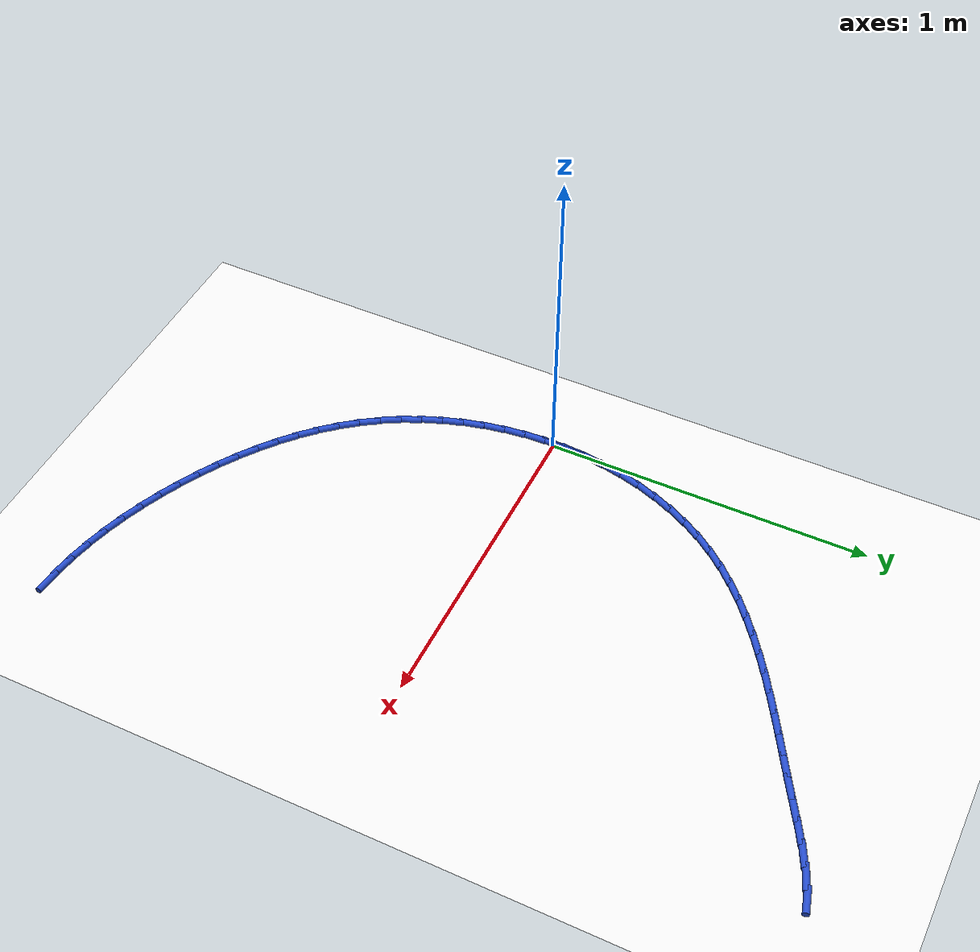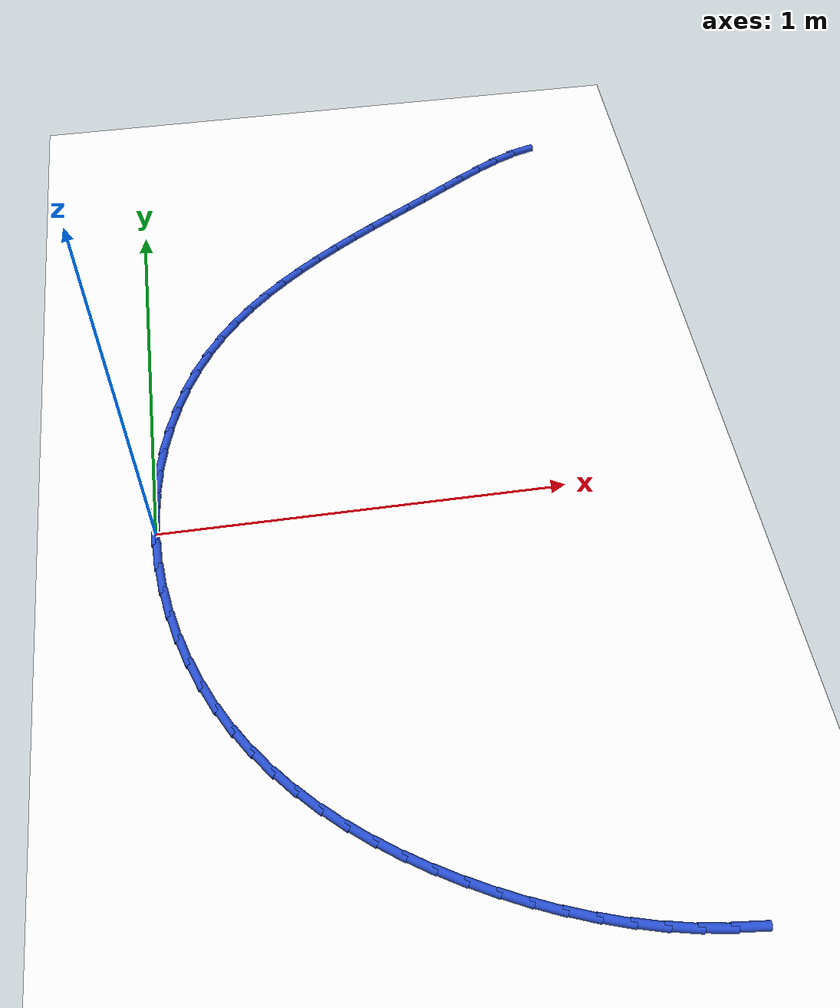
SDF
<sdf version="1.6">
 <world name="default">
  <model name="ground_plane">
   <static>1</static>
   <link name="link">
    <collision name="collision">
     <geometry><plane><normal>0 0 1</normal><size>100 100</size></plane></geometry>
     <surface><friction><ode><mu>100</mu><mu2>50</mu2></ode></friction></surface>
    </collision>
    <visual name="visual">
     <cast_shadows>0</cast_shadows>
     <geometry><plane><normal>0 0 1</normal><size>100 100</size></plane></geometry>
     <material>
      <script><uri>file://media/materials/scripts/gazebo.material</uri><name>Gazebo/WhiteGlow</name></script>
     </material>
    </visual>
   </link>
  </model>
  <model name="line">
   <link name="link_0">
    <pose>2.7755575615628914e-17 -8.326672684688674e-17 0.01 0 1.57 1.5383048450577044</pose>
    <collision name="collision">
     <geometry><cylinder><radius>0.01</radius><length>0.08</length></cylinder></geometry>
    </collision>
    <visual name="visual">
     <material>
      <script><name>Gazebo/Blue</name><uri>file://media/materials/scripts/gazebo.material</uri></script>
     </material>
     <geometry><cylinder><radius>0.01</radius><length>0.08</length></cylinder></geometry>
    </visual>
   </link>
   <link name="link_1">
    <pose>0.0021593180544016606 0.06643458605412965 0.01 0 1.57 1.473430863029208</pose>
    <collision name="collision">
     <geometry><cylinder><radius>0.01</radius><length>0.08</length></cylinder></geometry>
    </collision>
    <visual name="visual">
     <material>
      <script><name>Gazebo/Blue</name><uri>file://media/materials/scripts/gazebo.material</uri></script>
     </material>
     <geometry><cylinder><radius>0.01</radius><length>0.08</length></cylinder></geometry>
    </visual>
   </link>
   <link name="link_2">
    <pose>0.00862148668599755 0.1325949568865087 0.01 0 1.57 1.4088046228676312</pose>
    <collision name="collision">
     <geometry><cylinder><radius>0.01</radius><length>0.08</length></cylinder></geometry>
    </collision>
    <visual name="visual">
     <material>
      <script><name>Gazebo/Blue</name><uri>file://media/materials/scripts/gazebo.material</uri></script>
     </material>
     <geometry><cylinder><radius>0.01</radius><length>0.08</length></cylinder></geometry>
    </visual>
   </link>
   <link name="link_3">
    <pose>0.019326214655444214 0.19809786922541528 0.01 0 1.57 1.3438339779923358</pose>
    <collision name="collision">
     <geometry><cylinder><radius>0.01</radius><length>0.08</length></cylinder></geometry>
    </collision>
    <visual name="visual">
     <material>
      <script><name>Gazebo/Blue</name><uri>file://media/materials/scripts/gazebo.material</uri></script>
     </material>
     <geometry><cylinder><radius>0.01</radius><length>0.08</length></cylinder></geometry>
    </visual>
   </link>
   <link name="link_4">
    <pose>0.03421321072339824 0.26256007979912793 0.01 0 1.57 1.2779212628547423</pose>
    <collision name="collision">
     <geometry><cylinder><radius>0.01</radius><length>0.08</length></cylinder></geometry>
    </collision>
    <visual name="visual">
     <material>
      <script><name>Gazebo/Blue</name><uri>file://media/materials/scripts/gazebo.material</uri></script>
     </material>
     <geometry><cylinder><radius>0.01</radius><length>0.08</length></cylinder></geometry>
    </visual>
   </link>
   <link name="link_5">
    <pose>0.05322218365051612 0.3255983453359247 0.01 0 1.57 1.2104658327878925</pose>
    <collision name="collision">
     <geometry><cylinder><radius>0.01</radius><length>0.08</length></cylinder></geometry>
    </collision>
    <visual name="visual">
     <material>
      <script><name>Gazebo/Blue</name><uri>file://media/materials/scripts/gazebo.material</uri></script>
     </material>
     <geometry><cylinder><radius>0.01</radius><length>0.08</length></cylinder></geometry>
    </visual>
   </link>
   <link name="link_6">
    <pose>0.0762928421974544 0.3868294225640839 0.01 0 1.57 1.1408694959239598</pose>
    <collision name="collision">
     <geometry><cylinder><radius>0.01</radius><length>0.08</length></cylinder></geometry>
    </collision>
    <visual name="visual">
     <material>
      <script><name>Gazebo/Blue</name><uri>file://media/materials/scripts/gazebo.material</uri></script>
     </material>
     <geometry><cylinder><radius>0.01</radius><length>0.08</length></cylinder></geometry>
    </visual>
   </link>
   <link name="link_7">
    <pose>0.10336489512486964 0.445870068211884 0.01 0 1.57 1.068547176870324</pose>
    <collision name="collision">
     <geometry><cylinder><radius>0.01</radius><length>0.08</length></cylinder></geometry>
    </collision>
    <visual name="visual">
     <material>
      <script><name>Gazebo/Blue</name><uri>file://media/materials/scripts/gazebo.material</uri></script>
     </material>
     <geometry><cylinder><radius>0.01</radius><length>0.08</length></cylinder></geometry>
    </visual>
   </link>
   <link name="link_8">
    <pose>0.1343780511934184 0.5023370390076031 0.01 0 1.57 0.9929823302384625</pose>
    <collision name="collision">
     <geometry><cylinder><radius>0.01</radius><length>0.08</length></cylinder></geometry>
    </collision>
    <visual name="visual">
     <material>
      <script><name>Gazebo/Blue</name><uri>file://media/materials/scripts/gazebo.material</uri></script>
     </material>
     <geometry><cylinder><radius>0.01</radius><length>0.08</length></cylinder></geometry>
    </visual>
   </link>
   <link name="link_9">
    <pose>0.16927091916878825 0.5558497208174965 0.01 0 1.57 0.9169583615623522</pose>
    <collision name="collision">
     <geometry><cylinder><radius>0.01</radius><length>0.08</length></cylinder></geometry>
    </collision>
    <visual name="visual">
     <material>
      <script><name>Gazebo/Blue</name><uri>file://media/materials/scripts/gazebo.material</uri></script>
     </material>
     <geometry><cylinder><radius>0.01</radius><length>0.08</length></cylinder></geometry>
    </visual>
   </link>
   <link name="link_10">
    <pose>0.20788991143261926 0.6062478614381221 0.01 0 1.57 0.8464773536232252</pose>
    <collision name="collision">
     <geometry><cylinder><radius>0.01</radius><length>0.08</length></cylinder></geometry>
    </collision>
    <visual name="visual">
     <material>
      <script><name>Gazebo/Blue</name><uri>file://media/materials/scripts/gazebo.material</uri></script>
     </material>
     <geometry><cylinder><radius>0.01</radius><length>0.08</length></cylinder></geometry>
    </visual>
   </link>
   <link name="link_11">
    <pose>0.2499210057239522 0.6537546693396363 0.01 0 1.57 0.7827757205989305</pose>
    <collision name="collision">
     <geometry><cylinder><radius>0.01</radius><length>0.08</length></cylinder></geometry>
    </collision>
    <visual name="visual">
     <material>
      <script><name>Gazebo/Blue</name><uri>file://media/materials/scripts/gazebo.material</uri></script>
     </material>
     <geometry><cylinder><radius>0.01</radius><length>0.08</length></cylinder></geometry>
    </visual>
   </link>
   <link name="link_12">
    <pose>0.2950341050000433 0.698631773912711 0.01 0 1.57 0.7262028533721293</pose>
    <collision name="collision">
     <geometry><cylinder><radius>0.01</radius><length>0.08</length></cylinder></geometry>
    </collision>
    <visual name="visual">
     <material>
      <script><name>Gazebo/Blue</name><uri>file://media/materials/scripts/gazebo.material</uri></script>
     </material>
     <geometry><cylinder><radius>0.01</radius><length>0.08</length></cylinder></geometry>
    </visual>
   </link>
   <link name="link_13">
    <pose>0.34289911221814906 0.7411408045480177 0.01 0 1.57 0.676836737810878</pose>
    <collision name="collision">
     <geometry><cylinder><radius>0.01</radius><length>0.08</length></cylinder></geometry>
    </collision>
    <visual name="visual">
     <material>
      <script><name>Gazebo/Blue</name><uri>file://media/materials/scripts/gazebo.material</uri></script>
     </material>
     <geometry><cylinder><radius>0.01</radius><length>0.08</length></cylinder></geometry>
    </visual>
   </link>
   <link name="link_14">
    <pose>0.39318593033552535 0.7815433906362274 0.01 0 1.57 0.6345695370384538</pose>
    <collision name="collision">
     <geometry><cylinder><radius>0.01</radius><length>0.08</length></cylinder></geometry>
    </collision>
    <visual name="visual">
     <material>
      <script><name>Gazebo/Blue</name><uri>file://media/materials/scripts/gazebo.material</uri></script>
     </material>
     <geometry><cylinder><radius>0.01</radius><length>0.08</length></cylinder></geometry>
    </visual>
   </link>
   <link name="link_15">
    <pose>0.44556446230942903 0.8201011615680125 0.01 0 1.57 0.5991857148123297</pose>
    <collision name="collision">
     <geometry><cylinder><radius>0.01</radius><length>0.08</length></cylinder></geometry>
    </collision>
    <visual name="visual">
     <material>
      <script><name>Gazebo/Blue</name><uri>file://media/materials/scripts/gazebo.material</uri></script>
     </material>
     <geometry><cylinder><radius>0.01</radius><length>0.08</length></cylinder></geometry>
    </visual>
   </link>
   <link name="link_16">
    <pose>0.49970461109711606 0.8570757467340443 0.01 0 1.57 0.5704250843834294</pose>
    <collision name="collision">
     <geometry><cylinder><radius>0.01</radius><length>0.08</length></cylinder></geometry>
    </collision>
    <visual name="visual">
     <material>
      <script><name>Gazebo/Blue</name><uri>file://media/materials/scripts/gazebo.material</uri></script>
     </material>
     <geometry><cylinder><radius>0.01</radius><length>0.08</length></cylinder></geometry>
    </visual>
   </link>
   <link name="link_17">
    <pose>0.5552762796558428 0.892728775524994 0.01 0 1.57 0.5480295174714259</pose>
    <collision name="collision">
     <geometry><cylinder><radius>0.01</radius><length>0.08</length></cylinder></geometry>
    </collision>
    <visual name="visual">
     <material>
      <script><name>Gazebo/Blue</name><uri>file://media/materials/scripts/gazebo.material</uri></script>
     </material>
     <geometry><cylinder><radius>0.01</radius><length>0.08</length></cylinder></geometry>
    </visual>
   </link>
   <link name="link_18">
    <pose>0.6119493709428655 0.9273218773315334 0.01 0 1.57 0.531775418899</pose>
    <collision name="collision">
     <geometry><cylinder><radius>0.01</radius><length>0.08</length></cylinder></geometry>
    </collision>
    <visual name="visual">
     <material>
      <script><name>Gazebo/Blue</name><uri>file://media/materials/scripts/gazebo.material</uri></script>
     </material>
     <geometry><cylinder><radius>0.01</radius><length>0.08</length></cylinder></geometry>
    </visual>
   </link>
   <link name="link_19">
    <pose>0.6693937879154407 0.961116681544334 0.01 0 1.57 0.5214952260274197</pose>
    <collision name="collision">
     <geometry><cylinder><radius>0.01</radius><length>0.08</length></cylinder></geometry>
    </collision>
    <visual name="visual">
     <material>
      <script><name>Gazebo/Blue</name><uri>file://media/materials/scripts/gazebo.material</uri></script>
     </material>
     <geometry><cylinder><radius>0.01</radius><length>0.08</length></cylinder></geometry>
    </visual>
   </link>
   <link name="link_20">
    <pose>0.7272794335308242 0.9943748175540674 0.01 0 1.57 0.5170910729290448</pose>
    <collision name="collision">
     <geometry><cylinder><radius>0.01</radius><length>0.08</length></cylinder></geometry>
    </collision>
    <visual name="visual">
     <material>
      <script><name>Gazebo/Blue</name><uri>file://media/materials/scripts/gazebo.material</uri></script>
     </material>
     <geometry><cylinder><radius>0.01</radius><length>0.08</length></cylinder></geometry>
    </visual>
   </link>
   <link name="link_21">
    <pose>0.7852762107462726 1.027357914751405 0.01 0 1.57 0.5185430590705487</pose>
    <collision name="collision">
     <geometry><cylinder><radius>0.01</radius><length>0.08</length></cylinder></geometry>
    </collision>
    <visual name="visual">
     <material>
      <script><name>Gazebo/Blue</name><uri>file://media/materials/scripts/gazebo.material</uri></script>
     </material>
     <geometry><cylinder><radius>0.01</radius><length>0.08</length></cylinder></geometry>
    </visual>
   </link>
   <link name="link_22">
    <pose>0.8430540225190424 1.0603276025270185 0.01 0 1.57 0.5252454165928753</pose>
    <collision name="collision">
     <geometry><cylinder><radius>0.01</radius><length>0.08</length></cylinder></geometry>
    </collision>
    <visual name="visual">
     <material>
      <script><name>Gazebo/Blue</name><uri>file://media/materials/scripts/gazebo.material</uri></script>
     </material>
     <geometry><cylinder><radius>0.01</radius><length>0.08</length></cylinder></geometry>
    </visual>
   </link>
   <link name="link_23">
    <pose>0.9003049417684814 1.093507251506111 0.01 0 1.57 0.5226236516915725</pose>
    <collision name="collision">
     <geometry><cylinder><radius>0.01</radius><length>0.08</length></cylinder></geometry>
    </collision>
    <visual name="visual">
     <material>
      <script><name>Gazebo/Blue</name><uri>file://media/materials/scripts/gazebo.material</uri></script>
     </material>
     <geometry><cylinder><radius>0.01</radius><length>0.08</length></cylinder></geometry>
    </visual>
   </link>
   <link name="link_24">
    <pose>0.9572052111700283 1.1262846992142581 0.01 0 1.57 0.49602064431551185</pose>
    <collision name="collision">
     <geometry><cylinder><radius>0.01</radius><length>0.08</length></cylinder></geometry>
    </collision>
    <visual name="visual">
     <material>
      <script><name>Gazebo/Blue</name><uri>file://media/materials/scripts/gazebo.material</uri></script>
     </material>
     <geometry><cylinder><radius>0.01</radius><length>0.08</length></cylinder></geometry>
    </visual>
   </link>
   <link name="link_25">
    <pose>1.0144013610553777 1.1572362064558448 0.01 0 1.57 0.44405609492628595</pose>
    <collision name="collision">
     <geometry><cylinder><radius>0.01</radius><length>0.08</length></cylinder></geometry>
    </collision>
    <visual name="visual">
     <material>
      <script><name>Gazebo/Blue</name><uri>file://media/materials/scripts/gazebo.material</uri></script>
     </material>
     <geometry><cylinder><radius>0.01</radius><length>0.08</length></cylinder></geometry>
    </visual>
   </link>
   <link name="link_26">
    <pose>1.0725593145617562 1.184904567816617 0.01 0 1.57 0.36620476230937643</pose>
    <collision name="collision">
     <geometry><cylinder><radius>0.01</radius><length>0.08</length></cylinder></geometry>
    </collision>
    <visual name="visual">
     <material>
      <script><name>Gazebo/Blue</name><uri>file://media/materials/scripts/gazebo.material</uri></script>
     </material>
     <geometry><cylinder><radius>0.01</radius><length>0.08</length></cylinder></geometry>
    </visual>
   </link>
   <link name="link_27">
    <pose>1.1323449948263888 1.2078325778823182 0.01 0 1.57 0.26450936932442654</pose>
    <collision name="collision">
     <geometry><cylinder><radius>0.01</radius><length>0.08</length></cylinder></geometry>
    </collision>
    <visual name="visual">
     <material>
      <script><name>Gazebo/Blue</name><uri>file://media/materials/scripts/gazebo.material</uri></script>
     </material>
     <geometry><cylinder><radius>0.01</radius><length>0.08</length></cylinder></geometry>
    </visual>
   </link>
   <link name="link_84">
    <pose>1.1232524003735165 -1.0754423940013769 0.01 0 1.57 -0.10050824680082195</pose>
    <collision name="collision">
     <geometry><cylinder><radius>0.01</radius><length>0.08</length></cylinder></geometry>
    </collision>
    <visual name="visual">
     <material>
      <script><name>Gazebo/Blue</name><uri>file://media/materials/scripts/gazebo.material</uri></script>
     </material>
     <geometry><cylinder><radius>0.01</radius><length>0.08</length></cylinder></geometry>
    </visual>
   </link>
   <link name="link_85">
    <pose>1.0586848692400175 -1.0689308836407274 0.01 0 1.57 -0.15884465103618645</pose>
    <collision name="collision">
     <geometry><cylinder><radius>0.01</radius><length>0.08</length></cylinder></geometry>
    </collision>
    <visual name="visual">
     <material>
      <script><name>Gazebo/Blue</name><uri>file://media/materials/scripts/gazebo.material</uri></script>
     </material>
     <geometry><cylinder><radius>0.01</radius><length>0.08</length></cylinder></geometry>
    </visual>
   </link>
   <link name="link_86">
    <pose>0.9941803158952465 -1.0585976255416318 0.01 0 1.57 -0.2138420940963841</pose>
    <collision name="collision">
     <geometry><cylinder><radius>0.01</radius><length>0.08</length></cylinder></geometry>
    </collision>
    <visual name="visual">
     <material>
      <script><name>Gazebo/Blue</name><uri>file://media/materials/scripts/gazebo.material</uri></script>
     </material>
     <geometry><cylinder><radius>0.01</radius><length>0.08</length></cylinder></geometry>
    </visual>
   </link>
   <link name="link_87">
    <pose>0.9299253274097179 -1.0446438583231916 0.01 0 1.57 -0.26578383218402657</pose>
    <collision name="collision">
     <geometry><cylinder><radius>0.01</radius><length>0.08</length></cylinder></geometry>
    </collision>
    <visual name="visual">
     <material>
      <script><name>Gazebo/Blue</name><uri>file://media/materials/scripts/gazebo.material</uri></script>
     </material>
     <geometry><cylinder><radius>0.01</radius><length>0.08</length></cylinder></geometry>
    </visual>
   </link>
   <link name="link_88">
    <pose>0.8661064908539491 -1.027270820604509 0.01 0 1.57 -0.31498077926893453</pose>
    <collision name="collision">
     <geometry><cylinder><radius>0.01</radius><length>0.08</length></cylinder></geometry>
    </collision>
    <visual name="visual">
     <material>
      <script><name>Gazebo/Blue</name><uri>file://media/materials/scripts/gazebo.material</uri></script>
     </material>
     <geometry><cylinder><radius>0.01</radius><length>0.08</length></cylinder></geometry>
    </visual>
   </link>
   <link name="link_89">
    <pose>0.8029103932984544 -1.006679751004685 0.01 0 1.57 -0.36175808967366185</pose>
    <collision name="collision">
     <geometry><cylinder><radius>0.01</radius><length>0.08</length></cylinder></geometry>
    </collision>
    <visual name="visual">
     <material>
      <script><name>Gazebo/Blue</name><uri>file://media/materials/scripts/gazebo.material</uri></script>
     </material>
     <geometry><cylinder><radius>0.01</radius><length>0.08</length></cylinder></geometry>
    </visual>
   </link>
   <link name="link_90">
    <pose>0.7405236218137513 -0.9830718881428223 0.01 0 1.57 -0.406446476131946</pose>
    <collision name="collision">
     <geometry><cylinder><radius>0.01</radius><length>0.08</length></cylinder></geometry>
    </collision>
    <visual name="visual">
     <material>
      <script><name>Gazebo/Blue</name><uri>file://media/materials/scripts/gazebo.material</uri></script>
     </material>
     <geometry><cylinder><radius>0.01</radius><length>0.08</length></cylinder></geometry>
    </visual>
   </link>
   <link name="link_91">
    <pose>0.6791327634703539 -0.9566484706380209 0.01 0 1.57 -0.44937739961287126</pose>
    <collision name="collision">
     <geometry><cylinder><radius>0.01</radius><length>0.08</length></cylinder></geometry>
    </collision>
    <visual name="visual">
     <material>
      <script><name>Gazebo/Blue</name><uri>file://media/materials/scripts/gazebo.material</uri></script>
     </material>
     <geometry><cylinder><radius>0.01</radius><length>0.08</length></cylinder></geometry>
    </visual>
   </link>
   <link name="link_92">
    <pose>0.6189244053387795 -0.9276107371093837 0.01 0 1.57 -0.4909304745769117</pose>
    <collision name="collision">
     <geometry><cylinder><radius>0.01</radius><length>0.08</length></cylinder></geometry>
    </collision>
    <visual name="visual">
     <material>
      <script><name>Gazebo/Blue</name><uri>file://media/materials/scripts/gazebo.material</uri></script>
     </material>
     <geometry><cylinder><radius>0.01</radius><length>0.08</length></cylinder></geometry>
    </visual>
   </link>
   <link name="link_93">
    <pose>0.560086149174591 -0.8961567504379234 0.01 0 1.57 -0.5331357974963578</pose>
    <collision name="collision">
     <geometry><cylinder><radius>0.01</radius><length>0.08</length></cylinder></geometry>
    </collision>
    <visual name="visual">
     <material>
      <script><name>Gazebo/Blue</name><uri>file://media/materials/scripts/gazebo.material</uri></script>
     </material>
     <geometry><cylinder><radius>0.01</radius><length>0.08</length></cylinder></geometry>
    </visual>
   </link>
   <link name="link_94">
    <pose>0.5028408668377691 -0.8623741859374318 0.01 0 1.57 -0.5783893806564775</pose>
    <collision name="collision">
     <geometry><cylinder><radius>0.01</radius><length>0.08</length></cylinder></geometry>
    </collision>
    <visual name="visual">
     <material>
      <script><name>Gazebo/Blue</name><uri>file://media/materials/scripts/gazebo.material</uri></script>
     </material>
     <geometry><cylinder><radius>0.01</radius><length>0.08</length></cylinder></geometry>
    </visual>
   </link>
   <link name="link_95">
    <pose>0.4474549680863487 -0.8262144550027768 0.01 0 1.57 -0.6270901143806803</pose>
    <collision name="collision">
     <geometry><cylinder><radius>0.01</radius><length>0.08</length></cylinder></geometry>
    </collision>
    <visual name="visual">
     <material>
      <script><name>Gazebo/Blue</name><uri>file://media/materials/scripts/gazebo.material</uri></script>
     </material>
     <geometry><cylinder><radius>0.01</radius><length>0.08</length></cylinder></geometry>
    </visual>
   </link>
   <link name="link_96">
    <pose>0.39419755394545797 -0.7876205459625589 0.01 0 1.57 -0.6794852747185315</pose>
    <collision name="collision">
     <geometry><cylinder><radius>0.01</radius><length>0.08</length></cylinder></geometry>
    </collision>
    <visual name="visual">
     <material>
      <script><name>Gazebo/Blue</name><uri>file://media/materials/scripts/gazebo.material</uri></script>
     </material>
     <geometry><cylinder><radius>0.01</radius><length>0.08</length></cylinder></geometry>
    </visual>
   </link>
   <link name="link_97">
    <pose>0.3433377254402228 -0.7465354471453768 0.01 0 1.57 -0.7357817449593221</pose>
    <collision name="collision">
     <geometry><cylinder><radius>0.01</radius><length>0.08</length></cylinder></geometry>
    </collision>
    <visual name="visual">
     <material>
      <script><name>Gazebo/Blue</name><uri>file://media/materials/scripts/gazebo.material</uri></script>
     </material>
     <geometry><cylinder><radius>0.01</radius><length>0.08</length></cylinder></geometry>
    </visual>
   </link>
   <link name="link_98">
    <pose>0.29514458359576873 -0.7029021468798284 0.01 0 1.57 -0.7961212883481859</pose>
    <collision name="collision">
     <geometry><cylinder><radius>0.01</radius><length>0.08</length></cylinder></geometry>
    </collision>
    <visual name="visual">
     <material>
      <script><name>Gazebo/Blue</name><uri>file://media/materials/scripts/gazebo.material</uri></script>
     </material>
     <geometry><cylinder><radius>0.01</radius><length>0.08</length></cylinder></geometry>
    </visual>
   </link>
   <link name="link_99">
    <pose>0.2498872294372239 -0.6566636334945148 0.01 0 1.57 -0.8605508217166068</pose>
    <collision name="collision">
     <geometry><cylinder><radius>0.01</radius><length>0.08</length></cylinder></geometry>
    </collision>
    <visual name="visual">
     <material>
      <script><name>Gazebo/Blue</name><uri>file://media/materials/scripts/gazebo.material</uri></script>
     </material>
     <geometry><cylinder><radius>0.01</radius><length>0.08</length></cylinder></geometry>
    </visual>
   </link>
   <link name="link_100">
    <pose>0.2078347639897135 -0.6077628953180335 0.01 0 1.57 -0.9289898008025043</pose>
    <collision name="collision">
     <geometry><cylinder><radius>0.01</radius><length>0.08</length></cylinder></geometry>
    </collision>
    <visual name="visual">
     <material>
      <script><name>Gazebo/Blue</name><uri>file://media/materials/scripts/gazebo.material</uri></script>
     </material>
     <geometry><cylinder><radius>0.01</radius><length>0.08</length></cylinder></geometry>
    </visual>
   </link>
   <link name="link_101">
    <pose>0.16925628827836525 -0.5561429206789852 0.01 0 1.57 -1.0008564638111292</pose>
    <collision name="collision">
     <geometry><cylinder><radius>0.01</radius><length>0.08</length></cylinder></geometry>
    </collision>
    <visual name="visual">
     <material>
      <script><name>Gazebo/Blue</name><uri>file://media/materials/scripts/gazebo.material</uri></script>
     </material>
     <geometry><cylinder><radius>0.01</radius><length>0.08</length></cylinder></geometry>
    </visual>
   </link>
   <link name="link_102">
    <pose>0.1344085776551846 -0.5017684530299609 0.01 0 1.57 -1.072517518033358</pose>
    <collision name="collision">
     <geometry><cylinder><radius>0.01</radius><length>0.08</length></cylinder></geometry>
    </collision>
    <visual name="visual">
     <material>
      <script><name>Gazebo/Blue</name><uri>file://media/materials/scripts/gazebo.material</uri></script>
     </material>
     <geometry><cylinder><radius>0.01</radius><length>0.08</length></cylinder></geometry>
    </visual>
   </link>
   <link name="link_103">
    <pose>0.10342539087460931 -0.4448213632215709 0.01 0 1.57 -1.1422031545274907</pose>
    <collision name="collision">
     <geometry><cylinder><radius>0.01</radius><length>0.08</length></cylinder></geometry>
    </collision>
    <visual name="visual">
     <material>
      <script><name>Gazebo/Blue</name><uri>file://media/materials/scripts/gazebo.material</uri></script>
     </material>
     <geometry><cylinder><radius>0.01</radius><length>0.08</length></cylinder></geometry>
    </visual>
   </link>
   <link name="link_104">
    <pose>0.07636979319688952 -0.38560829790502676 0.01 0 1.57 -1.2102110472051462</pose>
    <collision name="collision">
     <geometry><cylinder><radius>0.01</radius><length>0.08</length></cylinder></geometry>
    </collision>
    <visual name="visual">
     <material>
      <script><name>Gazebo/Blue</name><uri>file://media/materials/scripts/gazebo.material</uri></script>
     </material>
     <geometry><cylinder><radius>0.01</radius><length>0.08</length></cylinder></geometry>
    </visual>
   </link>
   <link name="link_105">
    <pose>0.05330400643826618 -0.32443739243149894 0.01 0 1.57 -1.276894129181585</pose>
    <collision name="collision">
     <geometry><cylinder><radius>0.01</radius><length>0.08</length></cylinder></geometry>
    </collision>
    <visual name="visual">
     <material>
      <script><name>Gazebo/Blue</name><uri>file://media/materials/scripts/gazebo.material</uri></script>
     </material>
     <geometry><cylinder><radius>0.01</radius><length>0.08</length></cylinder></geometry>
    </visual>
   </link>
   <link name="link_106">
    <pose>0.03429025241497898 -0.2616167821521545 0.01 0 1.57 -1.3426240788954587</pose>
    <collision name="collision">
     <geometry><cylinder><radius>0.01</radius><length>0.08</length></cylinder></geometry>
    </collision>
    <visual name="visual">
     <material>
      <script><name>Gazebo/Blue</name><uri>file://media/materials/scripts/gazebo.material</uri></script>
     </material>
     <geometry><cylinder><radius>0.01</radius><length>0.08</length></cylinder></geometry>
    </visual>
   </link>
   <link name="link_107">
    <pose>0.019390752943268683 -0.19745460241816426 0.01 0 1.57 -1.407781217284469</pose>
    <collision name="collision">
     <geometry><cylinder><radius>0.01</radius><length>0.08</length></cylinder></geometry>
    </collision>
    <visual name="visual">
     <material>
      <script><name>Gazebo/Blue</name><uri>file://media/materials/scripts/gazebo.material</uri></script>
     </material>
     <geometry><cylinder><radius>0.01</radius><length>0.08</length></cylinder></geometry>
    </visual>
   </link>
   <link name="link_108">
    <pose>0.008667729839375124 -0.13225898858069515 0.01 0 1.57 -1.4727465312245605</pose>
    <collision name="collision">
     <geometry><cylinder><radius>0.01</radius><length>0.08</length></cylinder></geometry>
    </collision>
    <visual name="visual">
     <material>
      <script><name>Gazebo/Blue</name><uri>file://media/materials/scripts/gazebo.material</uri></script>
     </material>
     <geometry><cylinder><radius>0.01</radius><length>0.08</length></cylinder></geometry>
    </visual>
   </link>
   <link name="link_109">
    <pose>0.002183404919538898 -0.06633807599091815 0.01 0 1.57 -1.53789490506667</pose>
    <collision name="collision">
     <geometry><cylinder><radius>0.01</radius><length>0.08</length></cylinder></geometry>
    </collision>
    <visual name="visual">
     <material>
      <script><name>Gazebo/Blue</name><uri>file://media/materials/scripts/gazebo.material</uri></script>
     </material>
     <geometry><cylinder><radius>0.01</radius><length>0.08</length></cylinder></geometry>
    </visual>
   </link>
   <link name="link_110">
    <pose>6.591949208711867e-17 -2.7755575615628914e-16 0.01 0 1.57 1.5380039943804125</pose>
    <collision name="collision">
     <geometry><cylinder><radius>0.01</radius><length>0.08</length></cylinder></geometry>
    </collision>
    <visual name="visual">
     <material>
      <script><name>Gazebo/Blue</name><uri>file://media/materials/scripts/gazebo.material</uri></script>
     </material>
     <geometry><cylinder><radius>0.01</radius><length>0.08</length></cylinder></geometry>
    </visual>
   </link>
   <link name="link_111">
    <pose>0.002179736896998942 0.06644710404088781 0.01 0 1.57 1.5380039943804118</pose>
    <collision name="collision">
     <geometry><cylinder><radius>0.01</radius><length>0.08</length></cylinder></geometry>
    </collision>
    <visual name="visual">
     <material>
      <script><name>Gazebo/Blue</name><uri>file://media/materials/scripts/gazebo.material</uri></script>
     </material>
     <geometry><cylinder><radius>0.01</radius><length>0.08</length></cylinder></geometry>
    </visual>
   </link>
  </model>
 </world>
</sdf>
